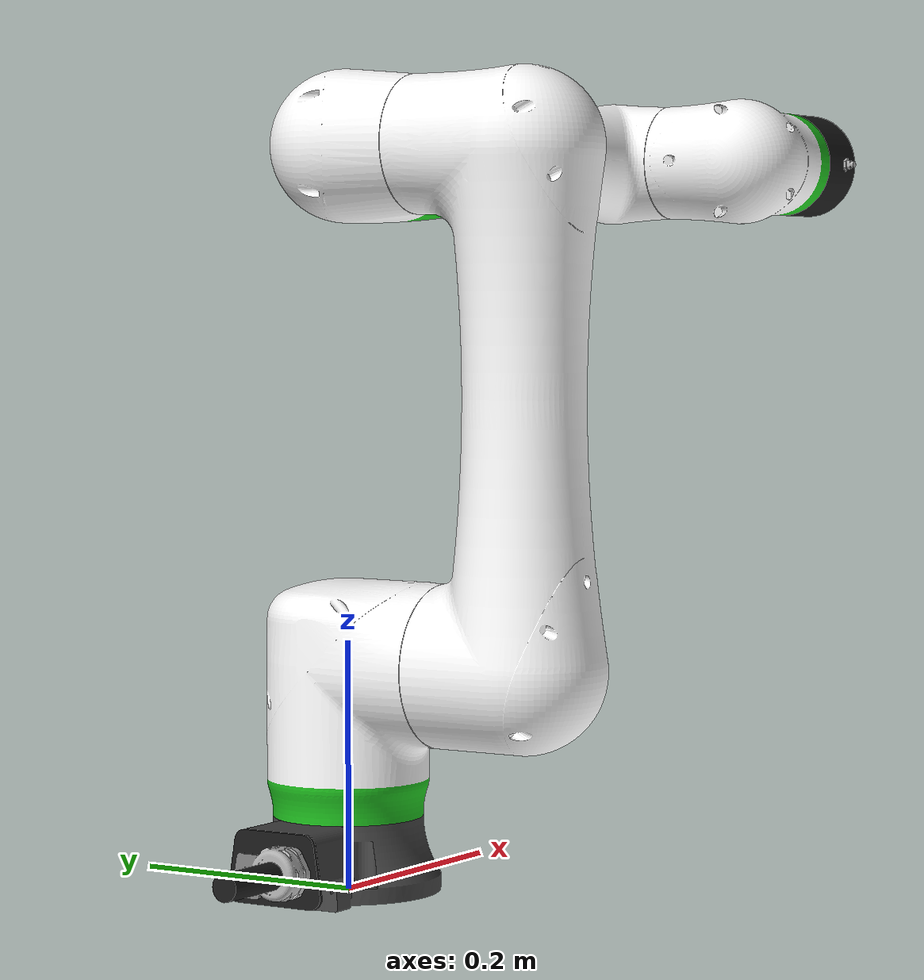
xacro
<?xml version="1.0" ?>
<robot name="crx5ia" xmlns:xacro="http://wiki.ros.org/xacro">
  <xacro:include
    filename="$(find fanuc_crx_description)/urdf/crx5ia_urdf_macro.xacro"
  />

  <link name="world" />
  <link name="ee_link" />
  <xacro:crx5ia parent="world" child="ee_link">
    <origin xyz="0 0 0" rpy="0 0 0" />
  </xacro:crx5ia>
</robot>

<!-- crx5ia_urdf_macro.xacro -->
<!--
SPDX-FileCopyrightText: 2025-2026, FANUC America Corporation
SPDX-FileCopyrightText: 2025-2026, FANUC CORPORATION
SPDX-License-Identifier: Apache-2.0
-->
<robot xmlns:xacro="http://wiki.ros.org/xacro">
  <xacro:macro
    name="crx5ia"
    params="prefix=''
            parent
            *origin
            child"
  >
    <xacro:property name="l_base" value="0.185" />
    <xacro:property name="l_1" value="0.0" />
    <xacro:property name="l_2" value="0.410" />
    <xacro:property name="l_3" value="0.0" />
    <xacro:property name="l_4" value="0.430" />
    <xacro:property name="l_5" value="0.130" />
    <xacro:property name="l_6" value="0.145" />

    <xacro:property name="j1_v" value="150" />
    <xacro:property name="j2_v" value="150" />
    <xacro:property name="j3_v" value="180" />
    <xacro:property name="j4_v" value="225" />
    <xacro:property name="j5_v" value="225" />
    <xacro:property name="j6_v" value="225" />

    <xacro:property name="j1_lower_limit" value="${radians(-200)}" />
    <xacro:property name="j2_lower_limit" value="${radians(-179.9)}" />
    <xacro:property name="j3_lower_limit" value="${radians(-68)}" />
    <xacro:property name="j4_lower_limit" value="${radians(-190)}" />
    <xacro:property name="j5_lower_limit" value="${radians(-179.9)}" />
    <xacro:property name="j6_lower_limit" value="${radians(-225)}" />

    <xacro:property name="j1_upper_limit" value="${radians(200)}" />
    <xacro:property name="j2_upper_limit" value="${radians(179.9)}" />
    <xacro:property name="j3_upper_limit" value="${radians(248)}" />
    <xacro:property name="j4_upper_limit" value="${radians(190)}" />
    <xacro:property name="j5_upper_limit" value="${radians(179.9)}" />
    <xacro:property name="j6_upper_limit" value="${radians(225)}" />

    <xacro:property name="j1_effort_limit" value="160" />
    <xacro:property name="j2_effort_limit" value="160" />
    <xacro:property name="j3_effort_limit" value="160" />
    <xacro:property name="j4_effort_limit" value="40" />
    <xacro:property name="j5_effort_limit" value="40" />
    <xacro:property name="j6_effort_limit" value="40" />

    <xacro:property name="j1_velocity_limit" value="${radians(150)}" />
    <xacro:property name="j2_velocity_limit" value="${radians(150)}" />
    <xacro:property name="j3_velocity_limit" value="${radians(180)}" />
    <xacro:property name="j4_velocity_limit" value="${radians(225)}" />
    <xacro:property name="j5_velocity_limit" value="${radians(225)}" />
    <xacro:property name="j6_velocity_limit" value="${radians(225)}" />

    <!-- links -->
    <link name="${prefix}base_link">
      <visual>
        <origin xyz="0 0 0" rpy="0 0 0" />
        <geometry>
          <mesh
            filename="package://fanuc_crx_description/meshes/crx5ia/visual/base.dae"
          />
        </geometry>
      </visual>
      <collision>
        <origin xyz="0 0 0" rpy="0 0 0" />
        <geometry>
          <mesh
            filename="package://fanuc_crx_description/meshes/crx5ia/collision/base.stl"
            scale="0.001 0.001 0.001"
          />
        </geometry>
      </collision>
      <inertial>
        <mass value="2.695" />
        <origin xyz="-0.02329 -0.00113 0.04668" />
        <inertia
          ixx="0.004082061"
          ixy="0.000281666"
          ixz="0.001055913"
          iyy="0.008721822"
          iyz="4.52295E-05"
          izz="0.009813918"
        />
      </inertial>
    </link>

    <link name="${prefix}J1_link">
      <visual>
        <origin xyz="0 0 ${-l_base}" rpy="0 0 0" />
        <geometry>
          <mesh
            filename="package://fanuc_crx_description/meshes/crx5ia/visual/j1.dae"
          />
        </geometry>
      </visual>
      <collision>
        <origin xyz="0 0 ${-l_base}" rpy="0 0 ${-pi/2}" />
        <geometry>
          <mesh
            filename="package://fanuc_crx_description/meshes/crx5ia/collision/j1.stl"
            scale="0.001 0.001 0.001"
          />
        </geometry>
      </collision>
      <inertial>
        <mass value="5.173" />
        <origin xyz="-0.00223 -0.04084 -0.03" />
        <inertia
          ixx="0.027098156"
          ixy="-0.000166078"
          ixz="-0.000127776"
          iyy="0.015731396"
          iyz="-0.005631899"
          izz="0.0195838"
        />
      </inertial>
    </link>

    <link name="${prefix}J2_link">
      <visual>
        <origin xyz="-${l_1} 0 ${-l_base}" rpy="0 0 0" />
        <geometry>
          <mesh
            filename="package://fanuc_crx_description/meshes/crx5ia/visual/j2.dae"
          />
        </geometry>
      </visual>
      <collision>
        <origin xyz="-${l_1} 0 ${-l_base}" rpy="0 0 ${-pi/2}" />
        <geometry>
          <mesh
            filename="package://fanuc_crx_description/meshes/crx5ia/collision/j2.stl"
            scale="0.001 0.001 0.001"
          />
        </geometry>
      </collision>
      <inertial>
        <mass value="5.014" />
        <origin xyz="0.00013 -0.14378 0.18566" />
        <inertia
          ixx="0.183168026"
          ixy="-3.67741E-05"
          ixz="0.000192371"
          iyy="0.178671177"
          iyz="0.01360861"
          izz="0.013395386"
        />
      </inertial>
    </link>

    <link name="${prefix}J3_link">
      <visual>
        <origin xyz="-${l_1} 0 ${-l_base - l_2}" rpy="0 0 0" />
        <geometry>
          <mesh
            filename="package://fanuc_crx_description/meshes/crx5ia/visual/j3.dae"
          />
        </geometry>
      </visual>
      <collision>
        <origin xyz="-${l_1} 0 ${-l_base - l_2}" rpy="0 0 ${-pi/2}" />
        <geometry>
          <mesh
            filename="package://fanuc_crx_description/meshes/crx5ia/collision/j3.stl"
            scale="0.001 0.001 0.001"
          />
        </geometry>
      </collision>
      <inertial>
        <mass value="3.133" />
        <origin xyz="0.0303 -0.01286 -0.0002" />
        <inertia
          ixx="0.005769799"
          ixy="0.001344252"
          ixz="1.14634E-05"
          iyy="0.008568956"
          iyz="1.8629E-06"
          izz="0.009083218"
        />
      </inertial>
    </link>

    <link name="${prefix}J4_link">
      <visual>
        <origin xyz="${-l_1} 0 ${-l_base - l_2 - l_3}" rpy="0 0 0" />
        <geometry>
          <mesh
            filename="package://fanuc_crx_description/meshes/crx5ia/visual/j4.dae"
          />
        </geometry>
      </visual>
      <collision>
        <origin xyz="${-l_1} 0 ${-l_base - l_2 - l_3}" rpy="0 0 ${-pi/2}" />
        <geometry>
          <mesh
            filename="package://fanuc_crx_description/meshes/crx5ia/collision/j4.stl"
            scale="0.001 0.001 0.001"
          />
        </geometry>
      </collision>
      <inertial>
        <mass value="3.508" />
        <origin xyz="0.28287 0.00109 0.00019" />
        <inertia
          ixx="0.003276324"
          ixy="-0.00164576"
          ixz="-1.35414E-05"
          iyy="0.053727933"
          iyz="-4.1252E-06"
          izz="0.053791595"
        />
      </inertial>
    </link>

    <link name="${prefix}J5_link">
      <visual>
        <origin xyz="${-l_1 - l_4} 0 ${-l_base - l_2 - l_3}" rpy="0 0 0" />
        <geometry>
          <mesh
            filename="package://fanuc_crx_description/meshes/crx5ia/visual/j5.dae"
          />
        </geometry>
      </visual>
      <collision>
        <origin
          xyz="${-l_1 - l_4} 0 ${-l_base - l_2 - l_3}"
          rpy="0 0 ${-pi/2}"
        />
        <geometry>
          <mesh
            filename="package://fanuc_crx_description/meshes/crx5ia/collision/j5.stl"
            scale="0.001 0.001 0.001"
          />
        </geometry>
      </collision>
      <inertial>
        <mass value="2.434" />
        <origin xyz="0.01442 -0.09491 0.00164" />
        <inertia
          ixx="0.006167974"
          ixy="-0.001284188"
          ixz="-2.28931E-05"
          iyy="0.003922645"
          iyz="-0.00029073"
          izz="0.007292078"
        />
      </inertial>
    </link>

    <link name="${prefix}J6_link">
      <visual>
        <origin xyz="${-l_1 - l_4} ${l_5} ${-l_base - l_2 - l_3}" rpy="0 0 0" />
        <geometry>
          <mesh
            filename="package://fanuc_crx_description/meshes/crx5ia/visual/j6.dae"
          />
        </geometry>
      </visual>
      <collision>
        <origin xyz="0 0 0" rpy="0 0 0" />
        <geometry>
          <mesh
            filename="package://fanuc_crx_description/meshes/crx5ia/collision/j6.stl"
            scale="0.001 0.001 0.001"
          />
        </geometry>
      </collision>
      <inertial>
        <mass value="1.272" />
        <origin xyz="0.10028 0.00052 0.00002" />
        <inertia
          ixx="0.00143989"
          ixy="1.06324E-05"
          ixz="-7.92E-08"
          iyy="0.001354656"
          iyz="-2.602E-07"
          izz="0.001399779"
        />
      </inertial>
    </link>

    <!-- joints -->
    <joint name="${prefix}J1" type="revolute">
      <origin xyz="0 0 ${l_base}" rpy="0 0 0" />
      <parent link="${prefix}base_link" />
      <child link="${prefix}J1_link" />
      <axis xyz="0 0 1" />
      <limit
        lower="${j1_lower_limit}"
        upper="${j1_upper_limit}"
        effort="${j1_effort_limit}"
        velocity="${j1_velocity_limit}"
      />
    </joint>

    <joint name="${prefix}J2" type="revolute">
      <origin xyz="${l_1} 0 0" rpy="0 0 0" />
      <parent link="${prefix}J1_link" />
      <child link="${prefix}J2_link" />
      <axis xyz="0 1 0" />
      <limit
        lower="${j2_lower_limit}"
        upper="${j2_upper_limit}"
        effort="${j2_effort_limit}"
        velocity="${j2_velocity_limit}"
      />
    </joint>

    <joint name="${prefix}J3" type="revolute">
      <origin xyz="0 0 ${l_2}" rpy="0 0 0" />
      <parent link="${prefix}J2_link" />
      <child link="${prefix}J3_link" />
      <axis xyz="0 -1 0" />
      <limit
        lower="${j3_lower_limit}"
        upper="${j3_upper_limit}"
        effort="${j3_effort_limit}"
        velocity="${j3_velocity_limit}"
      />
    </joint>

    <joint name="${prefix}J4" type="revolute">
      <origin xyz="0 0 ${l_3}" rpy="0 0 0" />
      <parent link="${prefix}J3_link" />
      <child link="${prefix}J4_link" />
      <axis xyz="-1 0 0" />
      <limit
        lower="${j4_lower_limit}"
        upper="${j4_upper_limit}"
        effort="${j4_effort_limit}"
        velocity="${j4_velocity_limit}"
      />
    </joint>

    <joint name="${prefix}J5" type="revolute">
      <origin xyz="${l_4} 0 0" rpy="0 0 0" />
      <parent link="${prefix}J4_link" />
      <child link="${prefix}J5_link" />
      <axis xyz="0 -1 0" />
      <limit
        lower="${j5_lower_limit}"
        upper="${j5_upper_limit}"
        effort="${j5_effort_limit}"
        velocity="${j5_velocity_limit}"
      />
    </joint>

    <joint name="${prefix}J6" type="revolute">
      <origin xyz="0 -${l_5} 0" rpy="0 0 0" />
      <parent link="${prefix}J5_link" />
      <child link="${prefix}J6_link" />
      <axis xyz="-1 0 0" />
      <limit
        lower="${j6_lower_limit}"
        upper="${j6_upper_limit}"
        effort="${j6_effort_limit}"
        velocity="${j6_velocity_limit}"
      />
    </joint>

    <!-- fanuc world coords -->
    <link name="${prefix}wbase" />
    <joint name="${prefix}base_link-wbase" type="fixed">
      <origin xyz="0 0 ${l_base}" rpy="0 0 0" />
      <parent link="${prefix}base_link" />
      <child link="${prefix}wbase" />
    </joint>

    <!-- flange coords -->
    <link name="${prefix}flange" />
    <joint name="${prefix}J6-flange" type="fixed">
      <origin xyz="${l_6} 0 0" rpy="0 0 0" />
      <parent link="${prefix}J6_link" />
      <child link="${prefix}flange" />
    </joint>

    <!-- FANUC flange coords -->
    <link name="${prefix}fanuc_flange" />
    <joint name="${prefix}flange-fanuc_flange" type="fixed">
      <origin xyz="0 0 0" rpy="${radians( 180)} ${radians(-90)} ${radians( 0)}" />
      <parent link="${prefix}flange" />
      <child link="${prefix}fanuc_flange" />
    </joint>

    <!-- Attach to parent -->
    <joint name="${prefix}base_joint" type="fixed">
      <xacro:insert_block name="origin" />
      <parent link="${parent}" />
      <child link="${prefix}base_link" />
    </joint>

    <!-- Attach child -->
    <joint name="${prefix}child_joint" type="fixed">
      <origin xyz="0 0 0" rpy="0 0 0" />
      <parent link="${prefix}flange" />
      <child link="${child}" />
    </joint>
  </xacro:macro>
</robot>
